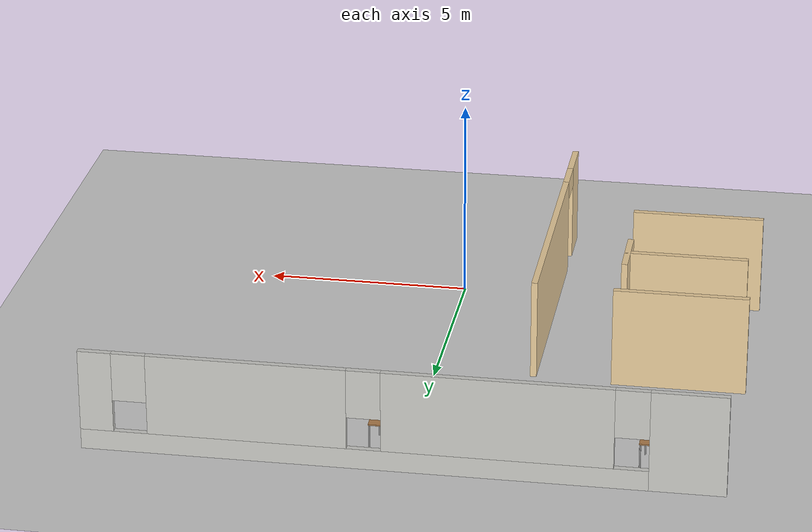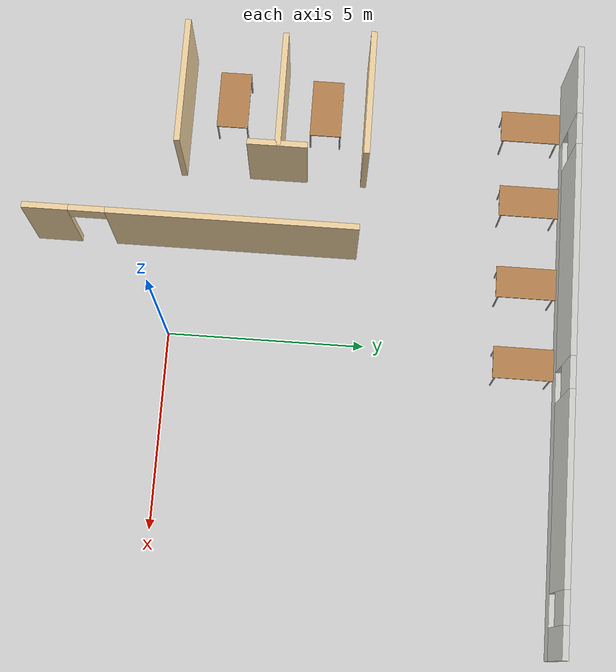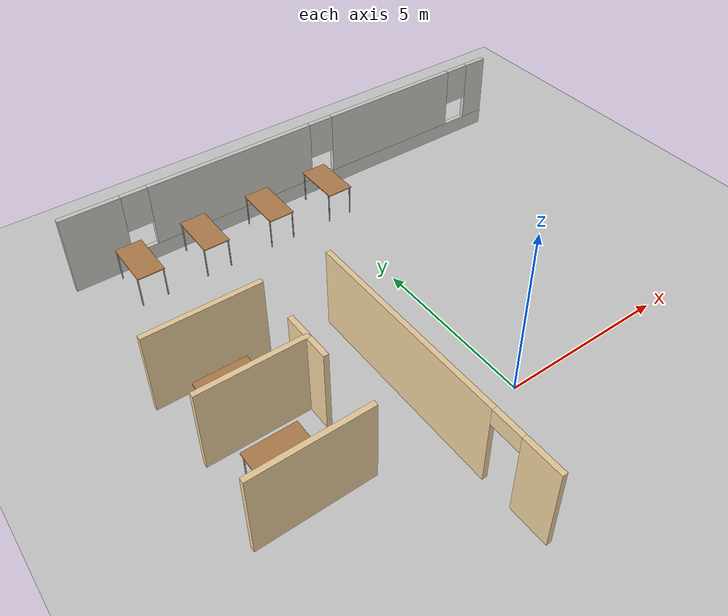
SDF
<sdf version="1.6">
 <world name="default">
  <model name="ground_plane">
   <static>1</static>
   <link name="link">
    <collision name="collision">
     <geometry><plane><normal>0 0 1</normal><size>100 100</size></plane></geometry>
     <surface>
      <contact><collide_bitmask>65535</collide_bitmask></contact>
      <friction><ode><mu>100</mu><mu2>50</mu2></ode></friction>
     </surface>
    </collision>
    <visual name="visual">
     <cast_shadows>0</cast_shadows>
     <geometry><plane><normal>0 0 1</normal><size>100 100</size></plane></geometry>
     <material>
      <script><uri>file://media/materials/scripts/gazebo.material</uri><name>Gazebo/Grey</name></script>
     </material>
    </visual>
   </link>
  </model>
  <model name="table_clone">
   <static>1</static>
   <link name="link">
    <collision name="surface">
     <pose>0 0 1 0 -0 0</pose>
     <geometry><box><size>1.5 0.8 0.03</size></box></geometry>
     <surface><friction><ode><mu>0.6</mu><mu2>0.6</mu2></ode></friction></surface>
    </collision>
    <visual name="visual1">
     <pose>0 0 1 0 -0 0</pose>
     <geometry><box><size>1.5 0.8 0.03</size></box></geometry>
     <material>
      <script><uri>file://media/materials/scripts/gazebo.material</uri><name>Gazebo/Wood</name></script>
     </material>
    </visual>
    <collision name="front_left_leg">
     <pose>0.68 0.38 0.5 0 -0 0</pose>
     <geometry><cylinder><radius>0.02</radius><length>1</length></cylinder></geometry>
    </collision>
    <visual name="front_left_leg">
     <pose>0.68 0.38 0.5 0 -0 0</pose>
     <geometry><cylinder><radius>0.02</radius><length>1</length></cylinder></geometry>
     <material>
      <script><uri>file://media/materials/scripts/gazebo.material</uri><name>Gazebo/Grey</name></script>
     </material>
    </visual>
    <collision name="front_right_leg">
     <pose>0.68 -0.38 0.5 0 -0 0</pose>
     <geometry><cylinder><radius>0.02</radius><length>1</length></cylinder></geometry>
    </collision>
    <visual name="front_right_leg">
     <pose>0.68 -0.38 0.5 0 -0 0</pose>
     <geometry><cylinder><radius>0.02</radius><length>1</length></cylinder></geometry>
     <material>
      <script><uri>file://media/materials/scripts/gazebo.material</uri><name>Gazebo/Grey</name></script>
     </material>
    </visual>
    <collision name="back_right_leg">
     <pose>-0.68 -0.38 0.5 0 -0 0</pose>
     <geometry><cylinder><radius>0.02</radius><length>1</length></cylinder></geometry>
    </collision>
    <visual name="back_right_leg">
     <pose>-0.68 -0.38 0.5 0 -0 0</pose>
     <geometry><cylinder><radius>0.02</radius><length>1</length></cylinder></geometry>
     <material>
      <script><uri>file://media/materials/scripts/gazebo.material</uri><name>Gazebo/Grey</name></script>
     </material>
    </visual>
    <collision name="back_left_leg">
     <pose>-0.68 0.38 0.5 0 -0 0</pose>
     <geometry><cylinder><radius>0.02</radius><length>1</length></cylinder></geometry>
    </collision>
    <visual name="back_left_leg">
     <pose>-0.68 0.38 0.5 0 -0 0</pose>
     <geometry><cylinder><radius>0.02</radius><length>1</length></cylinder></geometry>
     <material>
      <script><uri>file://media/materials/scripts/gazebo.material</uri><name>Gazebo/Grey</name></script>
     </material>
    </visual>
   </link>
   <pose>0.377686 8.9462 0 0 -0 1.57</pose>
  </model>
  <model name="table_clone_clone_clone">
   <static>1</static>
   <link name="link">
    <collision name="surface">
     <pose>0 0 1 0 -0 0</pose>
     <geometry><box><size>1.5 0.8 0.03</size></box></geometry>
     <surface><friction><ode><mu>0.6</mu><mu2>0.6</mu2></ode></friction></surface>
    </collision>
    <visual name="visual1">
     <pose>0 0 1 0 -0 0</pose>
     <geometry><box><size>1.5 0.8 0.03</size></box></geometry>
     <material>
      <script><uri>file://media/materials/scripts/gazebo.material</uri><name>Gazebo/Wood</name></script>
     </material>
    </visual>
    <collision name="front_left_leg">
     <pose>0.68 0.38 0.5 0 -0 0</pose>
     <geometry><cylinder><radius>0.02</radius><length>1</length></cylinder></geometry>
    </collision>
    <visual name="front_left_leg">
     <pose>0.68 0.38 0.5 0 -0 0</pose>
     <geometry><cylinder><radius>0.02</radius><length>1</length></cylinder></geometry>
     <material>
      <script><uri>file://media/materials/scripts/gazebo.material</uri><name>Gazebo/Grey</name></script>
     </material>
    </visual>
    <collision name="front_right_leg">
     <pose>0.68 -0.38 0.5 0 -0 0</pose>
     <geometry><cylinder><radius>0.02</radius><length>1</length></cylinder></geometry>
    </collision>
    <visual name="front_right_leg">
     <pose>0.68 -0.38 0.5 0 -0 0</pose>
     <geometry><cylinder><radius>0.02</radius><length>1</length></cylinder></geometry>
     <material>
      <script><uri>file://media/materials/scripts/gazebo.material</uri><name>Gazebo/Grey</name></script>
     </material>
    </visual>
    <collision name="back_right_leg">
     <pose>-0.68 -0.38 0.5 0 -0 0</pose>
     <geometry><cylinder><radius>0.02</radius><length>1</length></cylinder></geometry>
    </collision>
    <visual name="back_right_leg">
     <pose>-0.68 -0.38 0.5 0 -0 0</pose>
     <geometry><cylinder><radius>0.02</radius><length>1</length></cylinder></geometry>
     <material>
      <script><uri>file://media/materials/scripts/gazebo.material</uri><name>Gazebo/Grey</name></script>
     </material>
    </visual>
    <collision name="back_left_leg">
     <pose>-0.68 0.38 0.5 0 -0 0</pose>
     <geometry><cylinder><radius>0.02</radius><length>1</length></cylinder></geometry>
    </collision>
    <visual name="back_left_leg">
     <pose>-0.68 0.38 0.5 0 -0 0</pose>
     <geometry><cylinder><radius>0.02</radius><length>1</length></cylinder></geometry>
     <material>
      <script><uri>file://media/materials/scripts/gazebo.material</uri><name>Gazebo/Grey</name></script>
     </material>
    </visual>
   </link>
   <pose>-3.84215 8.93597 0 0 -0 1.57</pose>
  </model>
  <model name="table_clone_clone_clone_clone">
   <static>1</static>
   <link name="link">
    <collision name="surface">
     <pose>0 0 1 0 -0 0</pose>
     <geometry><box><size>1.5 0.8 0.03</size></box></geometry>
     <surface><friction><ode><mu>0.6</mu><mu2>0.6</mu2></ode></friction></surface>
    </collision>
    <visual name="visual1">
     <pose>0 0 1 0 -0 0</pose>
     <geometry><box><size>1.5 0.8 0.03</size></box></geometry>
     <material>
      <script><uri>file://media/materials/scripts/gazebo.material</uri><name>Gazebo/Wood</name></script>
     </material>
    </visual>
    <collision name="front_left_leg">
     <pose>0.68 0.38 0.5 0 -0 0</pose>
     <geometry><cylinder><radius>0.02</radius><length>1</length></cylinder></geometry>
    </collision>
    <visual name="front_left_leg">
     <pose>0.68 0.38 0.5 0 -0 0</pose>
     <geometry><cylinder><radius>0.02</radius><length>1</length></cylinder></geometry>
     <material>
      <script><uri>file://media/materials/scripts/gazebo.material</uri><name>Gazebo/Grey</name></script>
     </material>
    </visual>
    <collision name="front_right_leg">
     <pose>0.68 -0.38 0.5 0 -0 0</pose>
     <geometry><cylinder><radius>0.02</radius><length>1</length></cylinder></geometry>
    </collision>
    <visual name="front_right_leg">
     <pose>0.68 -0.38 0.5 0 -0 0</pose>
     <geometry><cylinder><radius>0.02</radius><length>1</length></cylinder></geometry>
     <material>
      <script><uri>file://media/materials/scripts/gazebo.material</uri><name>Gazebo/Grey</name></script>
     </material>
    </visual>
    <collision name="back_right_leg">
     <pose>-0.68 -0.38 0.5 0 -0 0</pose>
     <geometry><cylinder><radius>0.02</radius><length>1</length></cylinder></geometry>
    </collision>
    <visual name="back_right_leg">
     <pose>-0.68 -0.38 0.5 0 -0 0</pose>
     <geometry><cylinder><radius>0.02</radius><length>1</length></cylinder></geometry>
     <material>
      <script><uri>file://media/materials/scripts/gazebo.material</uri><name>Gazebo/Grey</name></script>
     </material>
    </visual>
    <collision name="back_left_leg">
     <pose>-0.68 0.38 0.5 0 -0 0</pose>
     <geometry><cylinder><radius>0.02</radius><length>1</length></cylinder></geometry>
    </collision>
    <visual name="back_left_leg">
     <pose>-0.68 0.38 0.5 0 -0 0</pose>
     <geometry><cylinder><radius>0.02</radius><length>1</length></cylinder></geometry>
     <material>
      <script><uri>file://media/materials/scripts/gazebo.material</uri><name>Gazebo/Grey</name></script>
     </material>
    </visual>
   </link>
   <pose>-5.86091 8.91423 0 0 -0 1.57</pose>
  </model>
  <model name="table_clone_clone">
   <static>1</static>
   <link name="link">
    <collision name="surface">
     <pose>0 0 1 0 -0 0</pose>
     <geometry><box><size>1.5 0.8 0.03</size></box></geometry>
     <surface><friction><ode><mu>0.6</mu><mu2>0.6</mu2></ode></friction></surface>
    </collision>
    <visual name="visual1">
     <pose>0 0 1 0 -0 0</pose>
     <geometry><box><size>1.5 0.8 0.03</size></box></geometry>
     <material>
      <script><uri>file://media/materials/scripts/gazebo.material</uri><name>Gazebo/Wood</name></script>
     </material>
    </visual>
    <collision name="front_left_leg">
     <pose>0.68 0.38 0.5 0 -0 0</pose>
     <geometry><cylinder><radius>0.02</radius><length>1</length></cylinder></geometry>
    </collision>
    <visual name="front_left_leg">
     <pose>0.68 0.38 0.5 0 -0 0</pose>
     <geometry><cylinder><radius>0.02</radius><length>1</length></cylinder></geometry>
     <material>
      <script><uri>file://media/materials/scripts/gazebo.material</uri><name>Gazebo/Grey</name></script>
     </material>
    </visual>
    <collision name="front_right_leg">
     <pose>0.68 -0.38 0.5 0 -0 0</pose>
     <geometry><cylinder><radius>0.02</radius><length>1</length></cylinder></geometry>
    </collision>
    <visual name="front_right_leg">
     <pose>0.68 -0.38 0.5 0 -0 0</pose>
     <geometry><cylinder><radius>0.02</radius><length>1</length></cylinder></geometry>
     <material>
      <script><uri>file://media/materials/scripts/gazebo.material</uri><name>Gazebo/Grey</name></script>
     </material>
    </visual>
    <collision name="back_right_leg">
     <pose>-0.68 -0.38 0.5 0 -0 0</pose>
     <geometry><cylinder><radius>0.02</radius><length>1</length></cylinder></geometry>
    </collision>
    <visual name="back_right_leg">
     <pose>-0.68 -0.38 0.5 0 -0 0</pose>
     <geometry><cylinder><radius>0.02</radius><length>1</length></cylinder></geometry>
     <material>
      <script><uri>file://media/materials/scripts/gazebo.material</uri><name>Gazebo/Grey</name></script>
     </material>
    </visual>
    <collision name="back_left_leg">
     <pose>-0.68 0.38 0.5 0 -0 0</pose>
     <geometry><cylinder><radius>0.02</radius><length>1</length></cylinder></geometry>
    </collision>
    <visual name="back_left_leg">
     <pose>-0.68 0.38 0.5 0 -0 0</pose>
     <geometry><cylinder><radius>0.02</radius><length>1</length></cylinder></geometry>
     <material>
      <script><uri>file://media/materials/scripts/gazebo.material</uri><name>Gazebo/Grey</name></script>
     </material>
    </visual>
   </link>
   <pose>-1.69364 8.94576 0 0 -0 1.57</pose>
  </model>
  <model name="table_0">
   <static>1</static>
   <link name="link">
    <collision name="surface">
     <pose>0 0 1 0 -0 0</pose>
     <geometry><box><size>1.5 0.8 0.03</size></box></geometry>
     <surface><friction><ode><mu>0.6</mu><mu2>0.6</mu2></ode></friction></surface>
    </collision>
    <visual name="visual1">
     <pose>0 0 1 0 -0 0</pose>
     <geometry><box><size>1.5 0.8 0.03</size></box></geometry>
     <material>
      <script><uri>file://media/materials/scripts/gazebo.material</uri><name>Gazebo/Wood</name></script>
     </material>
    </visual>
    <collision name="front_left_leg">
     <pose>0.68 0.38 0.5 0 -0 0</pose>
     <geometry><cylinder><radius>0.02</radius><length>1</length></cylinder></geometry>
    </collision>
    <visual name="front_left_leg">
     <pose>0.68 0.38 0.5 0 -0 0</pose>
     <geometry><cylinder><radius>0.02</radius><length>1</length></cylinder></geometry>
     <material>
      <script><uri>file://media/materials/scripts/gazebo.material</uri><name>Gazebo/Grey</name></script>
     </material>
    </visual>
    <collision name="front_right_leg">
     <pose>0.68 -0.38 0.5 0 -0 0</pose>
     <geometry><cylinder><radius>0.02</radius><length>1</length></cylinder></geometry>
    </collision>
    <visual name="front_right_leg">
     <pose>0.68 -0.38 0.5 0 -0 0</pose>
     <geometry><cylinder><radius>0.02</radius><length>1</length></cylinder></geometry>
     <material>
      <script><uri>file://media/materials/scripts/gazebo.material</uri><name>Gazebo/Grey</name></script>
     </material>
    </visual>
    <collision name="back_right_leg">
     <pose>-0.68 -0.38 0.5 0 -0 0</pose>
     <geometry><cylinder><radius>0.02</radius><length>1</length></cylinder></geometry>
    </collision>
    <visual name="back_right_leg">
     <pose>-0.68 -0.38 0.5 0 -0 0</pose>
     <geometry><cylinder><radius>0.02</radius><length>1</length></cylinder></geometry>
     <material>
      <script><uri>file://media/materials/scripts/gazebo.material</uri><name>Gazebo/Grey</name></script>
     </material>
    </visual>
    <collision name="back_left_leg">
     <pose>-0.68 0.38 0.5 0 -0 0</pose>
     <geometry><cylinder><radius>0.02</radius><length>1</length></cylinder></geometry>
    </collision>
    <visual name="back_left_leg">
     <pose>-0.68 0.38 0.5 0 -0 0</pose>
     <geometry><cylinder><radius>0.02</radius><length>1</length></cylinder></geometry>
     <material>
      <script><uri>file://media/materials/scripts/gazebo.material</uri><name>Gazebo/Grey</name></script>
     </material>
    </visual>
   </link>
   <pose>-6.00758 3.65362 0 0 -0 0</pose>
  </model>
  <model name="table_0_clone">
   <static>1</static>
   <link name="link">
    <collision name="surface">
     <pose>0 0 1 0 -0 0</pose>
     <geometry><box><size>1.5 0.8 0.03</size></box></geometry>
     <surface><friction><ode><mu>0.6</mu><mu2>0.6</mu2></ode></friction></surface>
    </collision>
    <visual name="visual1">
     <pose>0 0 1 0 -0 0</pose>
     <geometry><box><size>1.5 0.8 0.03</size></box></geometry>
     <material>
      <script><uri>file://media/materials/scripts/gazebo.material</uri><name>Gazebo/Wood</name></script>
     </material>
    </visual>
    <collision name="front_left_leg">
     <pose>0.68 0.38 0.5 0 -0 0</pose>
     <geometry><cylinder><radius>0.02</radius><length>1</length></cylinder></geometry>
    </collision>
    <visual name="front_left_leg">
     <pose>0.68 0.38 0.5 0 -0 0</pose>
     <geometry><cylinder><radius>0.02</radius><length>1</length></cylinder></geometry>
     <material>
      <script><uri>file://media/materials/scripts/gazebo.material</uri><name>Gazebo/Grey</name></script>
     </material>
    </visual>
    <collision name="front_right_leg">
     <pose>0.68 -0.38 0.5 0 -0 0</pose>
     <geometry><cylinder><radius>0.02</radius><length>1</length></cylinder></geometry>
    </collision>
    <visual name="front_right_leg">
     <pose>0.68 -0.38 0.5 0 -0 0</pose>
     <geometry><cylinder><radius>0.02</radius><length>1</length></cylinder></geometry>
     <material>
      <script><uri>file://media/materials/scripts/gazebo.material</uri><name>Gazebo/Grey</name></script>
     </material>
    </visual>
    <collision name="back_right_leg">
     <pose>-0.68 -0.38 0.5 0 -0 0</pose>
     <geometry><cylinder><radius>0.02</radius><length>1</length></cylinder></geometry>
    </collision>
    <visual name="back_right_leg">
     <pose>-0.68 -0.38 0.5 0 -0 0</pose>
     <geometry><cylinder><radius>0.02</radius><length>1</length></cylinder></geometry>
     <material>
      <script><uri>file://media/materials/scripts/gazebo.material</uri><name>Gazebo/Grey</name></script>
     </material>
    </visual>
    <collision name="back_left_leg">
     <pose>-0.68 0.38 0.5 0 -0 0</pose>
     <geometry><cylinder><radius>0.02</radius><length>1</length></cylinder></geometry>
    </collision>
    <visual name="back_left_leg">
     <pose>-0.68 0.38 0.5 0 -0 0</pose>
     <geometry><cylinder><radius>0.02</radius><length>1</length></cylinder></geometry>
     <material>
      <script><uri>file://media/materials/scripts/gazebo.material</uri><name>Gazebo/Grey</name></script>
     </material>
    </visual>
   </link>
   <pose>-6.08055 1.24411 0 0 -0 0</pose>
  </model>
  <model name="AutowayTower">
   <link name="Wall_12">
    <pose>-0.545738 -2.38461 0 0 -0 0</pose>
    <visual name="Wall_12_Visual_0">
     <pose>-1.01909 0 1.25 0 -0 0</pose>
     <geometry><box><size>6.21182 0.15 2.5</size></box></geometry>
     <material>
      <script><uri>file://media/materials/scripts/gazebo.material</uri><name>Gazebo/Grey</name></script>
      <ambient>0.921569 0.807843 0.615686 1</ambient>
      <shader type="pixel"/>
      <diffuse>0.7 0.7 0.7 1</diffuse>
      <specular>0.01 0.01 0.01 1</specular>
      <emissive>0 0 0 1</emissive>
     </material>
     <meta><layer>0</layer></meta>
    </visual>
    <visual name="Wall_12_Visual_1">
     <pose>3.55591 0 1.25 0 -0 0</pose>
     <geometry><box><size>1.13818 0.15 2.5</size></box></geometry>
     <material>
      <script><uri>file://media/materials/scripts/gazebo.material</uri><name>Gazebo/Grey</name></script>
      <ambient>0.921569 0.807843 0.615686 1</ambient>
      <shader type="pixel"/>
      <diffuse>0.7 0.7 0.7 1</diffuse>
      <specular>0.01 0.01 0.01 1</specular>
      <emissive>0 0 0 1</emissive>
     </material>
     <meta><layer>0</layer></meta>
    </visual>
    <visual name="Wall_12_Visual_2">
     <pose>2.53682 0 2.25 0 -0 0</pose>
     <geometry><box><size>0.9 0.15 0.5</size></box></geometry>
     <material>
      <script><uri>file://media/materials/scripts/gazebo.material</uri><name>Gazebo/Grey</name></script>
      <ambient>0.921569 0.807843 0.615686 1</ambient>
      <shader type="pixel"/>
      <diffuse>0.7 0.7 0.7 1</diffuse>
      <specular>0.01 0.01 0.01 1</specular>
      <emissive>0 0 0 1</emissive>
     </material>
     <meta><layer>0</layer></meta>
    </visual>
    <collision name="Wall_12_Collision_0">
     <pose>-1.01909 0 1.25 0 -0 0</pose>
     <geometry><box><size>6.21182 0.15 2.5</size></box></geometry>
     <surface>
      <friction>
       <ode><mu>1</mu><mu2>1</mu2><fdir1>0 0 0</fdir1><slip1>0</slip1><slip2>0</slip2></ode>
       <torsional>
        <coefficient>1</coefficient>
        <patch_radius>0</patch_radius>
        <surface_radius>0</surface_radius>
        <use_patch_radius>1</use_patch_radius>
        <ode><slip>0</slip></ode>
       </torsional>
      </friction>
      <bounce><restitution_coefficient>0</restitution_coefficient><threshold>1e+06</threshold></bounce>
      <contact>
       <collide_without_contact>0</collide_without_contact>
       <collide_without_contact_bitmask>1</collide_without_contact_bitmask>
       <collide_bitmask>1</collide_bitmask>
       <ode>
        <soft_cfm>0</soft_cfm>
        <soft_erp>0.2</soft_erp>
        <kp>1e+13</kp>
        <kd>1</kd>
        <max_vel>0.01</max_vel>
        <min_depth>0</min_depth>
       </ode>
       <bullet>
        <split_impulse>1</split_impulse>
        <split_impulse_penetration_threshold>-0.01</split_impulse_penetration_threshold>
        <soft_cfm>0</soft_cfm>
        <soft_erp>0.2</soft_erp>
        <kp>1e+13</kp>
        <kd>1</kd>
       </bullet>
      </contact>
     </surface>
    </collision>
    <collision name="Wall_12_Collision_1">
     <pose>3.55591 0 1.25 0 -0 0</pose>
     <geometry><box><size>1.13818 0.15 2.5</size></box></geometry>
     <surface>
      <friction>
       <ode><mu>1</mu><mu2>1</mu2><fdir1>0 0 0</fdir1><slip1>0</slip1><slip2>0</slip2></ode>
       <torsional>
        <coefficient>1</coefficient>
        <patch_radius>0</patch_radius>
        <surface_radius>0</surface_radius>
        <use_patch_radius>1</use_patch_radius>
        <ode><slip>0</slip></ode>
       </torsional>
      </friction>
      <bounce><restitution_coefficient>0</restitution_coefficient><threshold>1e+06</threshold></bounce>
      <contact>
       <collide_without_contact>0</collide_without_contact>
       <collide_without_contact_bitmask>1</collide_without_contact_bitmask>
       <collide_bitmask>1</collide_bitmask>
       <ode>
        <soft_cfm>0</soft_cfm>
        <soft_erp>0.2</soft_erp>
        <kp>1e+13</kp>
        <kd>1</kd>
        <max_vel>0.01</max_vel>
        <min_depth>0</min_depth>
       </ode>
       <bullet>
        <split_impulse>1</split_impulse>
        <split_impulse_penetration_threshold>-0.01</split_impulse_penetration_threshold>
        <soft_cfm>0</soft_cfm>
        <soft_erp>0.2</soft_erp>
        <kp>1e+13</kp>
        <kd>1</kd>
       </bullet>
      </contact>
     </surface>
    </collision>
    <collision name="Wall_12_Collision_2">
     <pose>2.53682 0 2.25 0 -0 0</pose>
     <geometry><box><size>0.9 0.15 0.5</size></box></geometry>
     <surface>
      <friction>
       <ode><mu>1</mu><mu2>1</mu2><fdir1>0 0 0</fdir1><slip1>0</slip1><slip2>0</slip2></ode>
       <torsional>
        <coefficient>1</coefficient>
        <patch_radius>0</patch_radius>
        <surface_radius>0</surface_radius>
        <use_patch_radius>1</use_patch_radius>
        <ode><slip>0</slip></ode>
       </torsional>
      </friction>
      <bounce><restitution_coefficient>0</restitution_coefficient><threshold>1e+06</threshold></bounce>
      <contact>
       <collide_without_contact>0</collide_without_contact>
       <collide_without_contact_bitmask>1</collide_without_contact_bitmask>
       <collide_bitmask>1</collide_bitmask>
       <ode>
        <soft_cfm>0</soft_cfm>
        <soft_erp>0.2</soft_erp>
        <kp>1e+13</kp>
        <kd>1</kd>
        <max_vel>0.01</max_vel>
        <min_depth>0</min_depth>
       </ode>
       <bullet>
        <split_impulse>1</split_impulse>
        <split_impulse_penetration_threshold>-0.01</split_impulse_penetration_threshold>
        <soft_cfm>0</soft_cfm>
        <soft_erp>0.2</soft_erp>
        <kp>1e+13</kp>
        <kd>1</kd>
       </bullet>
      </contact>
     </surface>
    </collision>
   </link>
   <link name="Wall_4">
    <pose>-9.91286 0.00369 0 0 -0 1.5708</pose>
    <visual name="Wall_4_Visual_3">
     <pose>3.57516 0 1.5 0 -0 0</pose>
     <geometry><box><size>4.67439 0.15 2</size></box></geometry>
     <material>
      <script><uri>file://media/materials/scripts/gazebo.material</uri><name>Gazebo/CeilingTiled</name></script>
      <ambient>1 1 1 1</ambient>
      <shader type="pixel"/>
      <diffuse>1 1 1 1</diffuse>
      <specular>0 0 0 1</specular>
      <emissive>0 0 0 1</emissive>
     </material>
     <meta><layer>0</layer></meta>
    </visual>
    <visual name="Wall_4_Visual_0">
     <pose>-6.60927 0 1.25 0 -0 0</pose>
     <geometry><box><size>1.78146 0.15 2.5</size></box></geometry>
     <material>
      <script><uri>file://media/materials/scripts/gazebo.material</uri><name>Gazebo/CeilingTiled</name></script>
      <ambient>1 1 1 1</ambient>
      <shader type="pixel"/>
      <diffuse>1 1 1 1</diffuse>
      <specular>0 0 0 1</specular>
      <emissive>0 0 0 1</emissive>
     </material>
     <meta><layer>0</layer></meta>
    </visual>
    <visual name="Wall_4_Visual_1">
     <pose>0.89073 0 0.25 0 -0 0</pose>
     <geometry><box><size>13.2185 0.15 0.5</size></box></geometry>
     <material>
      <script><uri>file://media/materials/scripts/gazebo.material</uri><name>Gazebo/CeilingTiled</name></script>
      <ambient>1 1 1 1</ambient>
      <shader type="pixel"/>
      <diffuse>1 1 1 1</diffuse>
      <specular>0 0 0 1</specular>
      <emissive>0 0 0 1</emissive>
     </material>
     <meta><layer>0</layer></meta>
    </visual>
    <visual name="Wall_4_Visual_2">
     <pose>-2.24029 0 1.5 0 -0 0</pose>
     <geometry><box><size>5.3565 0.15 2</size></box></geometry>
     <material>
      <script><uri>file://media/materials/scripts/gazebo.material</uri><name>Gazebo/CeilingTiled</name></script>
      <ambient>1 1 1 1</ambient>
      <shader type="pixel"/>
      <diffuse>1 1 1 1</diffuse>
      <specular>0 0 0 1</specular>
      <emissive>0 0 0 1</emissive>
     </material>
     <meta><layer>0</layer></meta>
    </visual>
    <visual name="Wall_4_Visual_4">
     <pose>7.10618 0 1.5 0 -0 0</pose>
     <geometry><box><size>0.787648 0.15 2</size></box></geometry>
     <material>
      <script><uri>file://media/materials/scripts/gazebo.material</uri><name>Gazebo/CeilingTiled</name></script>
      <ambient>1 1 1 1</ambient>
      <shader type="pixel"/>
      <diffuse>1 1 1 1</diffuse>
      <specular>0 0 0 1</specular>
      <emissive>0 0 0 1</emissive>
     </material>
     <meta><layer>0</layer></meta>
    </visual>
    <visual name="Wall_4_Visual_5">
     <pose>-5.31854 0 1.9 0 -0 0</pose>
     <geometry><box><size>0.8 0.15 1.2</size></box></geometry>
     <material>
      <script><uri>file://media/materials/scripts/gazebo.material</uri><name>Gazebo/CeilingTiled</name></script>
      <ambient>1 1 1 1</ambient>
      <shader type="pixel"/>
      <diffuse>1 1 1 1</diffuse>
      <specular>0 0 0 1</specular>
      <emissive>0 0 0 1</emissive>
     </material>
     <meta><layer>0</layer></meta>
    </visual>
    <visual name="Wall_4_Visual_6">
     <pose>0.837963 0 1.9 0 -0 0</pose>
     <geometry><box><size>0.8 0.15 1.2</size></box></geometry>
     <material>
      <script><uri>file://media/materials/scripts/gazebo.material</uri><name>Gazebo/CeilingTiled</name></script>
      <ambient>1 1 1 1</ambient>
      <shader type="pixel"/>
      <diffuse>1 1 1 1</diffuse>
      <specular>0 0 0 1</specular>
      <emissive>0 0 0 1</emissive>
     </material>
     <meta><layer>0</layer></meta>
    </visual>
    <visual name="Wall_4_Visual_7">
     <pose>6.31235 0 1.9 0 -0 0</pose>
     <geometry><box><size>0.8 0.15 1.2</size></box></geometry>
     <material>
      <script><uri>file://media/materials/scripts/gazebo.material</uri><name>Gazebo/CeilingTiled</name></script>
      <ambient>1 1 1 1</ambient>
      <shader type="pixel"/>
      <diffuse>1 1 1 1</diffuse>
      <specular>0 0 0 1</specular>
      <emissive>0 0 0 1</emissive>
     </material>
     <meta><layer>0</layer></meta>
    </visual>
    <collision name="Wall_4_Collision_0">
     <pose>-6.60927 0 1.25 0 -0 0</pose>
     <geometry><box><size>1.78146 0.15 2.5</size></box></geometry>
     <surface>
      <friction>
       <ode><mu>1</mu><mu2>1</mu2><fdir1>0 0 0</fdir1><slip1>0</slip1><slip2>0</slip2></ode>
       <torsional>
        <coefficient>1</coefficient>
        <patch_radius>0</patch_radius>
        <surface_radius>0</surface_radius>
        <use_patch_radius>1</use_patch_radius>
        <ode><slip>0</slip></ode>
       </torsional>
      </friction>
      <bounce><restitution_coefficient>0</restitution_coefficient><threshold>1e+06</threshold></bounce>
      <contact>
       <collide_without_contact>0</collide_without_contact>
       <collide_without_contact_bitmask>1</collide_without_contact_bitmask>
       <collide_bitmask>1</collide_bitmask>
       <ode>
        <soft_cfm>0</soft_cfm>
        <soft_erp>0.2</soft_erp>
        <kp>1e+13</kp>
        <kd>1</kd>
        <max_vel>0.01</max_vel>
        <min_depth>0</min_depth>
       </ode>
       <bullet>
        <split_impulse>1</split_impulse>
        <split_impulse_penetration_threshold>-0.01</split_impulse_penetration_threshold>
        <soft_cfm>0</soft_cfm>
        <soft_erp>0.2</soft_erp>
        <kp>1e+13</kp>
        <kd>1</kd>
       </bullet>
      </contact>
     </surface>
    </collision>
    <collision name="Wall_4_Collision_2">
     <pose>-2.24029 0 1.5 0 -0 0</pose>
     <geometry><box><size>5.3565 0.15 2</size></box></geometry>
     <surface>
      <friction>
       <ode><mu>1</mu><mu2>1</mu2><fdir1>0 0 0</fdir1><slip1>0</slip1><slip2>0</slip2></ode>
       <torsional>
        <coefficient>1</coefficient>
        <patch_radius>0</patch_radius>
        <surface_radius>0</surface_radius>
        <use_patch_radius>1</use_patch_radius>
        <ode><slip>0</slip></ode>
       </torsional>
      </friction>
      <bounce><restitution_coefficient>0</restitution_coefficient><threshold>1e+06</threshold></bounce>
      <contact>
       <collide_without_contact>0</collide_without_contact>
       <collide_without_contact_bitmask>1</collide_without_contact_bitmask>
       <collide_bitmask>1</collide_bitmask>
       <ode>
        <soft_cfm>0</soft_cfm>
        <soft_erp>0.2</soft_erp>
        <kp>1e+13</kp>
        <kd>1</kd>
        <max_vel>0.01</max_vel>
        <min_depth>0</min_depth>
       </ode>
       <bullet>
        <split_impulse>1</split_impulse>
        <split_impulse_penetration_threshold>-0.01</split_impulse_penetration_threshold>
        <soft_cfm>0</soft_cfm>
        <soft_erp>0.2</soft_erp>
        <kp>1e+13</kp>
        <kd>1</kd>
       </bullet>
      </contact>
     </surface>
    </collision>
    <collision name="Wall_4_Collision_1">
     <pose>0.89073 0 0.25 0 -0 0</pose>
     <geometry><box><size>13.2185 0.15 0.5</size></box></geometry>
     <surface>
      <friction>
       <ode><mu>1</mu><mu2>1</mu2><fdir1>0 0 0</fdir1><slip1>0</slip1><slip2>0</slip2></ode>
       <torsional>
        <coefficient>1</coefficient>
        <patch_radius>0</patch_radius>
        <surface_radius>0</surface_radius>
        <use_patch_radius>1</use_patch_radius>
        <ode><slip>0</slip></ode>
       </torsional>
      </friction>
      <bounce><restitution_coefficient>0</restitution_coefficient><threshold>1e+06</threshold></bounce>
      <contact>
       <collide_without_contact>0</collide_without_contact>
       <collide_without_contact_bitmask>1</collide_without_contact_bitmask>
       <collide_bitmask>1</collide_bitmask>
       <ode>
        <soft_cfm>0</soft_cfm>
        <soft_erp>0.2</soft_erp>
        <kp>1e+13</kp>
        <kd>1</kd>
        <max_vel>0.01</max_vel>
        <min_depth>0</min_depth>
       </ode>
       <bullet>
        <split_impulse>1</split_impulse>
        <split_impulse_penetration_threshold>-0.01</split_impulse_penetration_threshold>
        <soft_cfm>0</soft_cfm>
        <soft_erp>0.2</soft_erp>
        <kp>1e+13</kp>
        <kd>1</kd>
       </bullet>
      </contact>
     </surface>
    </collision>
    <collision name="Wall_4_Collision_3">
     <pose>3.57516 0 1.5 0 -0 0</pose>
     <geometry><box><size>4.67439 0.15 2</size></box></geometry>
     <surface>
      <friction>
       <ode><mu>1</mu><mu2>1</mu2><fdir1>0 0 0</fdir1><slip1>0</slip1><slip2>0</slip2></ode>
       <torsional>
        <coefficient>1</coefficient>
        <patch_radius>0</patch_radius>
        <surface_radius>0</surface_radius>
        <use_patch_radius>1</use_patch_radius>
        <ode><slip>0</slip></ode>
       </torsional>
      </friction>
      <bounce><restitution_coefficient>0</restitution_coefficient><threshold>1e+06</threshold></bounce>
      <contact>
       <collide_without_contact>0</collide_without_contact>
       <collide_without_contact_bitmask>1</collide_without_contact_bitmask>
       <collide_bitmask>1</collide_bitmask>
       <ode>
        <soft_cfm>0</soft_cfm>
        <soft_erp>0.2</soft_erp>
        <kp>1e+13</kp>
        <kd>1</kd>
        <max_vel>0.01</max_vel>
        <min_depth>0</min_depth>
       </ode>
       <bullet>
        <split_impulse>1</split_impulse>
        <split_impulse_penetration_threshold>-0.01</split_impulse_penetration_threshold>
        <soft_cfm>0</soft_cfm>
        <soft_erp>0.2</soft_erp>
        <kp>1e+13</kp>
        <kd>1</kd>
       </bullet>
      </contact>
     </surface>
    </collision>
    <collision name="Wall_4_Collision_4">
     <pose>7.10618 0 1.5 0 -0 0</pose>
     <geometry><box><size>0.787648 0.15 2</size></box></geometry>
     <surface>
      <friction>
       <ode><mu>1</mu><mu2>1</mu2><fdir1>0 0 0</fdir1><slip1>0</slip1><slip2>0</slip2></ode>
       <torsional>
        <coefficient>1</coefficient>
        <patch_radius>0</patch_radius>
        <surface_radius>0</surface_radius>
        <use_patch_radius>1</use_patch_radius>
        <ode><slip>0</slip></ode>
       </torsional>
      </friction>
      <bounce><restitution_coefficient>0</restitution_coefficient><threshold>1e+06</threshold></bounce>
      <contact>
       <collide_without_contact>0</collide_without_contact>
       <collide_without_contact_bitmask>1</collide_without_contact_bitmask>
       <collide_bitmask>1</collide_bitmask>
       <ode>
        <soft_cfm>0</soft_cfm>
        <soft_erp>0.2</soft_erp>
        <kp>1e+13</kp>
        <kd>1</kd>
        <max_vel>0.01</max_vel>
        <min_depth>0</min_depth>
       </ode>
       <bullet>
        <split_impulse>1</split_impulse>
        <split_impulse_penetration_threshold>-0.01</split_impulse_penetration_threshold>
        <soft_cfm>0</soft_cfm>
        <soft_erp>0.2</soft_erp>
        <kp>1e+13</kp>
        <kd>1</kd>
       </bullet>
      </contact>
     </surface>
    </collision>
    <collision name="Wall_4_Collision_5">
     <pose>-5.31854 0 1.9 0 -0 0</pose>
     <geometry><box><size>0.8 0.15 1.2</size></box></geometry>
     <surface>
      <friction>
       <ode><mu>1</mu><mu2>1</mu2><fdir1>0 0 0</fdir1><slip1>0</slip1><slip2>0</slip2></ode>
       <torsional>
        <coefficient>1</coefficient>
        <patch_radius>0</patch_radius>
        <surface_radius>0</surface_radius>
        <use_patch_radius>1</use_patch_radius>
        <ode><slip>0</slip></ode>
       </torsional>
      </friction>
      <bounce><restitution_coefficient>0</restitution_coefficient><threshold>1e+06</threshold></bounce>
      <contact>
       <collide_without_contact>0</collide_without_contact>
       <collide_without_contact_bitmask>1</collide_without_contact_bitmask>
       <collide_bitmask>1</collide_bitmask>
       <ode>
        <soft_cfm>0</soft_cfm>
        <soft_erp>0.2</soft_erp>
        <kp>1e+13</kp>
        <kd>1</kd>
        <max_vel>0.01</max_vel>
        <min_depth>0</min_depth>
       </ode>
       <bullet>
        <split_impulse>1</split_impulse>
        <split_impulse_penetration_threshold>-0.01</split_impulse_penetration_threshold>
        <soft_cfm>0</soft_cfm>
        <soft_erp>0.2</soft_erp>
        <kp>1e+13</kp>
        <kd>1</kd>
       </bullet>
      </contact>
     </surface>
    </collision>
    <collision name="Wall_4_Collision_7">
     <pose>6.31235 0 1.9 0 -0 0</pose>
     <geometry><box><size>0.8 0.15 1.2</size></box></geometry>
     <surface>
      <friction>
       <ode><mu>1</mu><mu2>1</mu2><fdir1>0 0 0</fdir1><slip1>0</slip1><slip2>0</slip2></ode>
       <torsional>
        <coefficient>1</coefficient>
        <patch_radius>0</patch_radius>
        <surface_radius>0</surface_radius>
        <use_patch_radius>1</use_patch_radius>
        <ode><slip>0</slip></ode>
       </torsional>
      </friction>
      <bounce><restitution_coefficient>0</restitution_coefficient><threshold>1e+06</threshold></bounce>
      <contact>
       <collide_without_contact>0</collide_without_contact>
       <collide_without_contact_bitmask>1</collide_without_contact_bitmask>
       <collide_bitmask>1</collide_bitmask>
       <ode>
        <soft_cfm>0</soft_cfm>
        <soft_erp>0.2</soft_erp>
        <kp>1e+13</kp>
        <kd>1</kd>
        <max_vel>0.01</max_vel>
        <min_depth>0</min_depth>
       </ode>
       <bullet>
        <split_impulse>1</split_impulse>
        <split_impulse_penetration_threshold>-0.01</split_impulse_penetration_threshold>
        <soft_cfm>0</soft_cfm>
        <soft_erp>0.2</soft_erp>
        <kp>1e+13</kp>
        <kd>1</kd>
       </bullet>
      </contact>
     </surface>
    </collision>
    <collision name="Wall_4_Collision_6">
     <pose>0.837963 0 1.9 0 -0 0</pose>
     <geometry><box><size>0.8 0.15 1.2</size></box></geometry>
     <surface>
      <friction>
       <ode><mu>1</mu><mu2>1</mu2><fdir1>0 0 0</fdir1><slip1>0</slip1><slip2>0</slip2></ode>
       <torsional>
        <coefficient>1</coefficient>
        <patch_radius>0</patch_radius>
        <surface_radius>0</surface_radius>
        <use_patch_radius>1</use_patch_radius>
        <ode><slip>0</slip></ode>
       </torsional>
      </friction>
      <bounce><restitution_coefficient>0</restitution_coefficient><threshold>1e+06</threshold></bounce>
      <contact>
       <collide_without_contact>0</collide_without_contact>
       <collide_without_contact_bitmask>1</collide_without_contact_bitmask>
       <collide_bitmask>1</collide_bitmask>
       <ode>
        <soft_cfm>0</soft_cfm>
        <soft_erp>0.2</soft_erp>
        <kp>1e+13</kp>
        <kd>1</kd>
        <max_vel>0.01</max_vel>
        <min_depth>0</min_depth>
       </ode>
       <bullet>
        <split_impulse>1</split_impulse>
        <split_impulse_penetration_threshold>-0.01</split_impulse_penetration_threshold>
        <soft_cfm>0</soft_cfm>
        <soft_erp>0.2</soft_erp>
        <kp>1e+13</kp>
        <kd>1</kd>
       </bullet>
      </contact>
     </surface>
    </collision>
   </link>
   <link name="Wall_58">
    <pose>-4.7251 -5.91613 0 0 -0 1.5708</pose>
    <visual name="Wall_58_Visual">
     <pose>0 0 1.25 0 -0 0</pose>
     <geometry><box><size>3.25 0.15 2.5</size></box></geometry>
     <material>
      <script><uri>file://media/materials/scripts/gazebo.material</uri><name>Gazebo/Grey</name></script>
      <ambient>0.921569 0.807843 0.615686 1</ambient>
      <shader type="pixel"/>
      <diffuse>0.7 0.7 0.7 1</diffuse>
      <specular>0.01 0.01 0.01 1</specular>
      <emissive>0 0 0 1</emissive>
     </material>
     <meta><layer>0</layer></meta>
    </visual>
    <collision name="Wall_58_Collision">
     <pose>0 0 1.25 0 -0 0</pose>
     <geometry><box><size>3.25 0.15 2.5</size></box></geometry>
     <surface>
      <friction>
       <ode><mu>1</mu><mu2>1</mu2><fdir1>0 0 0</fdir1><slip1>0</slip1><slip2>0</slip2></ode>
       <torsional>
        <coefficient>1</coefficient>
        <patch_radius>0</patch_radius>
        <surface_radius>0</surface_radius>
        <use_patch_radius>1</use_patch_radius>
        <ode><slip>0</slip></ode>
       </torsional>
      </friction>
      <bounce><restitution_coefficient>0</restitution_coefficient><threshold>1e+06</threshold></bounce>
      <contact>
       <collide_without_contact>0</collide_without_contact>
       <collide_without_contact_bitmask>1</collide_without_contact_bitmask>
       <collide_bitmask>1</collide_bitmask>
       <ode>
        <soft_cfm>0</soft_cfm>
        <soft_erp>0.2</soft_erp>
        <kp>1e+13</kp>
        <kd>1</kd>
        <max_vel>0.01</max_vel>
        <min_depth>0</min_depth>
       </ode>
       <bullet>
        <split_impulse>1</split_impulse>
        <split_impulse_penetration_threshold>-0.01</split_impulse_penetration_threshold>
        <soft_cfm>0</soft_cfm>
        <soft_erp>0.2</soft_erp>
        <kp>1e+13</kp>
        <kd>1</kd>
       </bullet>
      </contact>
     </surface>
    </collision>
   </link>
   <link name="Wall_58_clone">
    <pose>-2.51172 -4.40023 0 0 -0 3.1408</pose>
    <inertial>
     <mass>1</mass>
     <inertia><ixx>1</ixx><ixy>0</ixy><ixz>0</ixz><iyy>1</iyy><iyz>0</iyz><izz>1</izz></inertia>
    </inertial>
    <visual name="Wall_58_Visual">
     <pose>0 0 1.25 0 -0 0</pose>
     <geometry><box><size>1.5 0.15 2.5</size></box></geometry>
     <material>
      <script><uri>file://media/materials/scripts/gazebo.material</uri><name>Gazebo/Grey</name></script>
      <ambient>0.922 0.808 0.616 1</ambient>
      <shader type="pixel"><normal_map>__default__</normal_map></shader>
      <diffuse>0.7 0.7 0.7 1</diffuse>
      <specular>0.01 0.01 0.01 1</specular>
      <emissive>0 0 0 1</emissive>
     </material>
     <meta><layer>0</layer></meta>
    </visual>
    <collision name="Wall_58_Collision">
     <pose>0 0 1.25 0 -0 0</pose>
     <geometry><box><size>1.5 0.15 2.5</size></box></geometry>
     <surface>
      <friction>
       <ode><mu>1</mu><mu2>1</mu2><fdir1>0 0 0</fdir1><slip1>0</slip1><slip2>0</slip2></ode>
       <torsional>
        <coefficient>1</coefficient>
        <patch_radius>0</patch_radius>
        <surface_radius>0</surface_radius>
        <use_patch_radius>1</use_patch_radius>
        <ode><slip>0</slip></ode>
       </torsional>
      </friction>
      <bounce><restitution_coefficient>0</restitution_coefficient><threshold>1e+06</threshold></bounce>
      <contact>
       <collide_without_contact>0</collide_without_contact>
       <collide_without_contact_bitmask>1</collide_without_contact_bitmask>
       <collide_bitmask>1</collide_bitmask>
       <ode>
        <soft_cfm>0</soft_cfm>
        <soft_erp>0.2</soft_erp>
        <kp>1e+13</kp>
        <kd>1</kd>
        <max_vel>0.01</max_vel>
        <min_depth>0</min_depth>
       </ode>
       <bullet>
        <split_impulse>1</split_impulse>
        <split_impulse_penetration_threshold>-0.01</split_impulse_penetration_threshold>
        <soft_cfm>0</soft_cfm>
        <soft_erp>0.2</soft_erp>
        <kp>1e+13</kp>
        <kd>1</kd>
       </bullet>
      </contact>
     </surface>
    </collision>
   </link>
   <link name="Wall_63">
    <pose>-2.52135 -5.84786 0 0 0 -1.5708</pose>
    <visual name="Wall_63_Visual">
     <pose>0 0 1.25 0 -0 0</pose>
     <geometry><box><size>3 0.15 2.5</size></box></geometry>
     <material>
      <script><uri>file://media/materials/scripts/gazebo.material</uri><name>Gazebo/Grey</name></script>
      <ambient>0.921569 0.807843 0.615686 1</ambient>
      <shader type="pixel"/>
      <diffuse>0.7 0.7 0.7 1</diffuse>
      <specular>0.01 0.01 0.01 1</specular>
      <emissive>0 0 0 1</emissive>
     </material>
     <meta><layer>0</layer></meta>
    </visual>
    <collision name="Wall_63_Collision">
     <pose>0 0 1.25 0 -0 0</pose>
     <geometry><box><size>3 0.15 2.5</size></box></geometry>
     <surface>
      <friction>
       <ode><mu>1</mu><mu2>1</mu2><fdir1>0 0 0</fdir1><slip1>0</slip1><slip2>0</slip2></ode>
       <torsional>
        <coefficient>1</coefficient>
        <patch_radius>0</patch_radius>
        <surface_radius>0</surface_radius>
        <use_patch_radius>1</use_patch_radius>
        <ode><slip>0</slip></ode>
       </torsional>
      </friction>
      <bounce><restitution_coefficient>0</restitution_coefficient><threshold>1e+06</threshold></bounce>
      <contact>
       <collide_without_contact>0</collide_without_contact>
       <collide_without_contact_bitmask>1</collide_without_contact_bitmask>
       <collide_bitmask>1</collide_bitmask>
       <ode>
        <soft_cfm>0</soft_cfm>
        <soft_erp>0.2</soft_erp>
        <kp>1e+13</kp>
        <kd>1</kd>
        <max_vel>0.01</max_vel>
        <min_depth>0</min_depth>
       </ode>
       <bullet>
        <split_impulse>1</split_impulse>
        <split_impulse_penetration_threshold>-0.01</split_impulse_penetration_threshold>
        <soft_cfm>0</soft_cfm>
        <soft_erp>0.2</soft_erp>
        <kp>1e+13</kp>
        <kd>1</kd>
       </bullet>
      </contact>
     </surface>
    </collision>
   </link>
   <link name="Wall_65">
    <pose>-0.037762 -5.92039 0 0 0 -1.5708</pose>
    <visual name="Wall_65_Visual">
     <pose>0 0 1.25 0 -0 0</pose>
     <geometry><box><size>3.25 0.15 2.5</size></box></geometry>
     <material>
      <script><uri>file://media/materials/scripts/gazebo.material</uri><name>Gazebo/Grey</name></script>
      <ambient>0.921569 0.807843 0.615686 1</ambient>
      <shader type="pixel"/>
      <diffuse>0.7 0.7 0.7 1</diffuse>
      <specular>0.01 0.01 0.01 1</specular>
      <emissive>0 0 0 1</emissive>
     </material>
     <meta><layer>0</layer></meta>
    </visual>
    <collision name="Wall_65_Collision">
     <pose>0 0 1.25 0 -0 0</pose>
     <geometry><box><size>3.25 0.15 2.5</size></box></geometry>
     <surface>
      <friction>
       <ode><mu>1</mu><mu2>1</mu2><fdir1>0 0 0</fdir1><slip1>0</slip1><slip2>0</slip2></ode>
       <torsional>
        <coefficient>1</coefficient>
        <patch_radius>0</patch_radius>
        <surface_radius>0</surface_radius>
        <use_patch_radius>1</use_patch_radius>
        <ode><slip>0</slip></ode>
       </torsional>
      </friction>
      <bounce><restitution_coefficient>0</restitution_coefficient><threshold>1e+06</threshold></bounce>
      <contact>
       <collide_without_contact>0</collide_without_contact>
       <collide_without_contact_bitmask>1</collide_without_contact_bitmask>
       <collide_bitmask>1</collide_bitmask>
       <ode>
        <soft_cfm>0</soft_cfm>
        <soft_erp>0.2</soft_erp>
        <kp>1e+13</kp>
        <kd>1</kd>
        <max_vel>0.01</max_vel>
        <min_depth>0</min_depth>
       </ode>
       <bullet>
        <split_impulse>1</split_impulse>
        <split_impulse_penetration_threshold>-0.01</split_impulse_penetration_threshold>
        <soft_cfm>0</soft_cfm>
        <soft_erp>0.2</soft_erp>
        <kp>1e+13</kp>
        <kd>1</kd>
       </bullet>
      </contact>
     </surface>
    </collision>
   </link>
   <static>1</static>
   <pose>3e-06 0 0 0 0 -1.57</pose>
  </model>
 </world>
</sdf>
